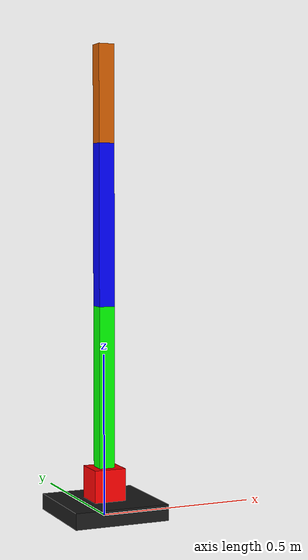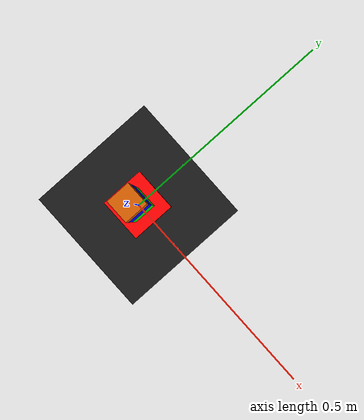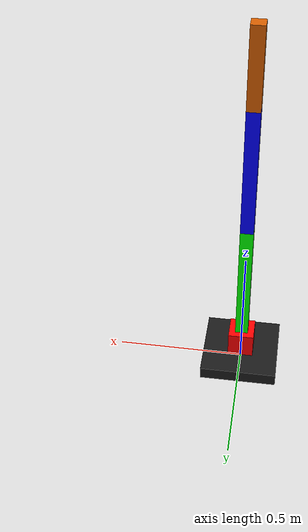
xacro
<?xml version="1.0" encoding="utf-8"?>
<!--Aqui comienza el robot-->
<robot name="robot_scara" xmlns:xacro="http://ros.org/wiki/xacro" >

    <link name="world">
    </link>

    <joint name="world_joint" type="fixed">
        <parent link="world"/>
        <child link="base_link"/>
        <origin xyz="0 0 0" rpy="0 0 0"/>
    </joint>

    <link name="base_link">
        <visual>
            <origin xyz="0.0 0.0 0.025" rpy="0 0 0" />
            <geometry>
                <box size="0.3 0.3 0.05" />
            </geometry>
            <material name="grey">
                <color rgba="0.1 0.1 0.1 1.0" />
            </material>
        </visual>
        <collision>
            <origin xyz="0.0 0.0 0.025" rpy="0 0 0" />
            <geometry>
                <box size="0.3 0.3 0.05" />
            </geometry>
        </collision>
        <inertial>
            <origin xyz="0 0 0" rpy="0 0 0"/>
            <mass value="1"/>
            <inertia ixx="1.0" ixy="0.0" ixz="0.0"
                iyy="1.0" iyz="0.0" izz="1.0"/>
        </inertial>
    </link>

    <link name="link_1">
        <visual>
            <origin xyz="0.0 0.0 0.05" rpy="0 0 0" />
            <geometry>
                <box size="0.1 0.1 0.1" />
            </geometry>
            <material name="red">
                <color rgba="1 0.0 0.0 1.0"/>
            </material>
        </visual>
        <collision>
            <origin xyz="0.0 0.0 0.05" rpy="0 0 0" />
            <geometry>
                <box size="0.05 0.05 0.1" />
            </geometry>
        </collision>
        <inertial>
            <origin xyz="0 0 0" rpy="0 0 0"/>
            <mass value="1"/>
            <inertia ixx="1.0" ixy="0.0" ixz="0.0"
                iyy="1.0" iyz="0.0" izz="1.0"/>
        </inertial>
    </link>

    <joint name="link_1_joint" type="revolute">
        <parent link="base_link"/>
        <child link="link_1"/>
        <axis xyz="0 0 1"/>
        <limit lower="-3.14159" upper="3.14159" velocity="50.0"
               effort="1000.0"/>
        <origin xyz="0 0 0.05" rpy="0 0 0"/>
    </joint>

    <link name="link_2">
        <visual>
            <origin xyz="0.0 0.0 0.25" rpy="0 0 0" />
            <geometry>
                <box size="0.05 0.05 0.5" />
            </geometry>
            <material name="green">
                <color rgba="0.0 1.0 0.0 1.0" />
            </material>
        </visual>
        <collision>
            <origin xyz="0.0 0.0 0.25" rpy="0 0 0" />
            <geometry>
                <box size="0.05 0.05 0.5" />
            </geometry>
        </collision>
        <inertial>
            <origin xyz="0 0 0" rpy="0 0 0"/>
            <mass value="1"/>
            <inertia ixx="1.0" ixy="0.0" ixz="0.0"
                iyy="1.0" iyz="0.0" izz="1.0"/>
        </inertial>
    </link>

    <joint name="link_2_joint" type="revolute">
        <parent link="link_1"/>
        <child link="link_2"/>
        <axis xyz="0 1 0"/>
        <limit lower="-3.14159" upper="3.14159" velocity="50.0"
               effort="1000.0"/>
        <origin xyz="0 0 0.1" rpy="0 0 0"/>
    </joint>

    <link name="link_3">
        <visual>
            <origin xyz="0.0 0.0 0.25" rpy="0 0 0" />
            <geometry>
                <box size="0.05 0.05 0.5" />
            </geometry>
            <material name="blue">
                <color rgba="0.0 0.0 1.0 1.0" />
            </material>
        </visual>
        <collision>
            <origin xyz="0.0 0.0 0.25" rpy="0 0 0" />
            <geometry>
                <box size="0.05 0.05 0.5" />
            </geometry>
        </collision>
        <inertial>
            <origin xyz="0 0 0" rpy="0 0 0"/>
            <mass value="1"/>
            <inertia ixx="1.0" ixy="0.0" ixz="0.0"
                iyy="1.0" iyz="0.0" izz="1.0"/>
        </inertial>
    </link>

    <joint name="link_3_joint" type="revolute">
        <parent link="link_2"/>
        <child link="link_3"/>
        <axis xyz="0 1 0"/>
        <limit lower="-3.14159" upper="3.14159" velocity="50.0"
               effort="1000.0"/>
        <origin xyz="0.0 0.0 0.5" rpy="0 0 0"/>
    </joint>

    <link name="link_4">
        <visual>
            <origin xyz="0.0 0.0 0.15" rpy="0 0 0" />
            <geometry>
                <box size="0.05 0.05 0.3" />
            </geometry>
            <material name="b">
                <color rgba="0.0 0.5.0 0.7 1.0" />
            </material>
        </visual>
        <collision>
            <origin xyz="0.0 0.0 0.15" rpy="0 0 0" />
            <geometry>
                <box size="0.05 0.05 0.3" />
            </geometry>
        </collision>
        <inertial>
            <origin xyz="0 0 0" rpy="0 0 0"/>
            <mass value="1"/>
            <inertia ixx="1.0" ixy="0.0" ixz="0.0"
                iyy="1.0" iyz="0.0" izz="1.0"/>
        </inertial>
    </link>

    <joint name="link_4_joint" type="revolute">
        <parent link="link_3"/>
        <child link="link_4"/>
        <axis xyz="0 1 0"/>
        <limit lower="-3.14159" upper="3.14159" velocity="50.0"
               effort="1000.0"/>
        <origin xyz="0 0.0 0.5" rpy="0 0 0"/>
    </joint>

</robot>
